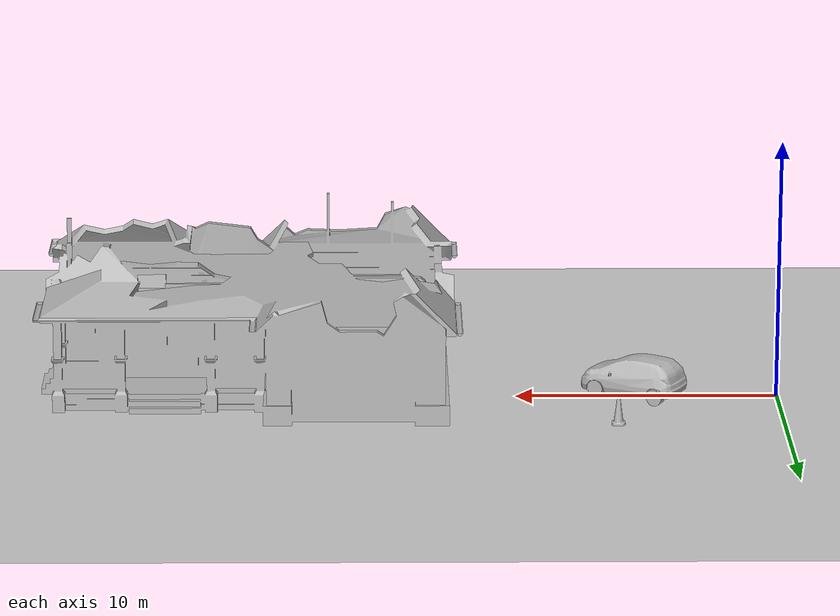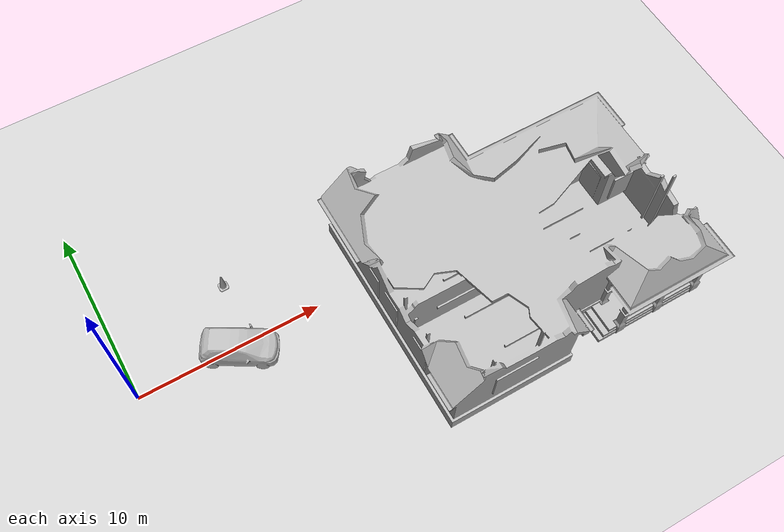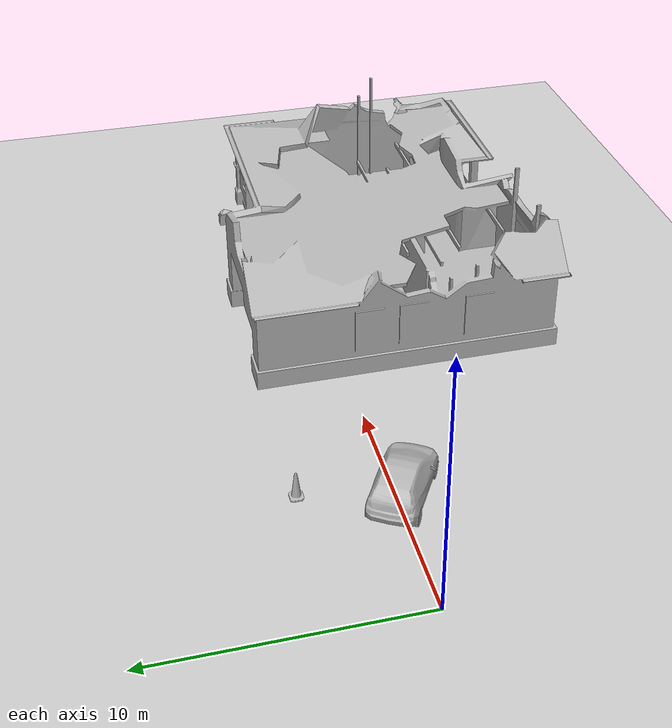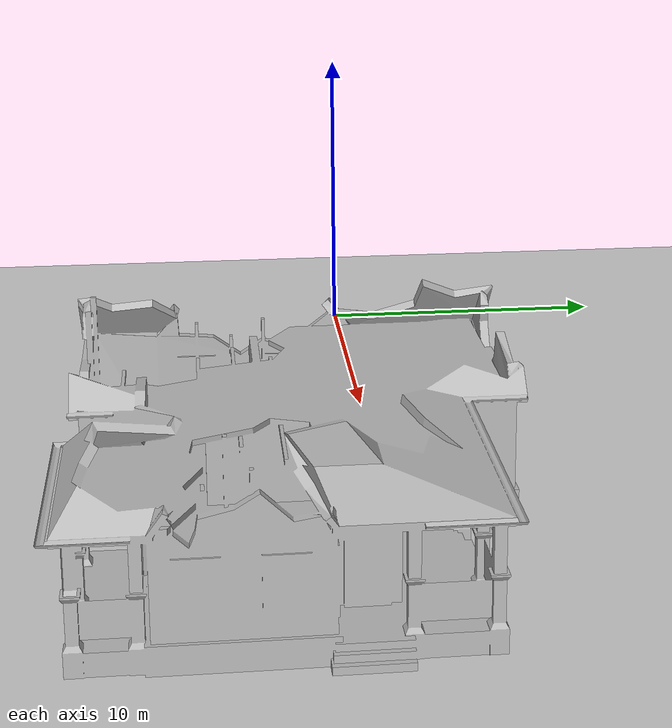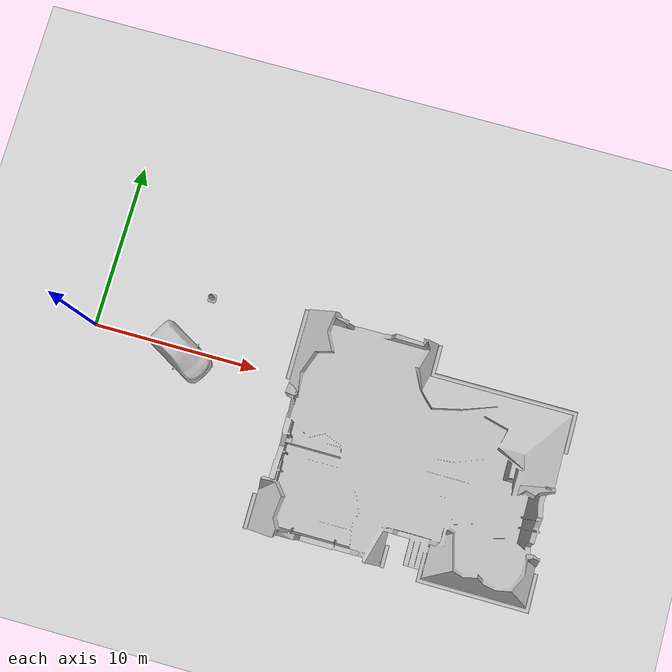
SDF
<sdf version="1.7">
 <world name="default">
  <light name="sun" type="directional">
   <pose>0 0 10 0 -0 0</pose>
   <diffuse>0.8 0.8 0.8 1</diffuse>
   <specular>0.2 0.2 0.2 1</specular>
   <attenuation>
    <range>1000</range>
    <constant>0.9</constant>
    <linear>0.01</linear>
    <quadratic>0.001</quadratic>
   </attenuation>
   <direction>-0.5 0.1 -0.9</direction>
   <spot><inner_angle>0</inner_angle><outer_angle>0</outer_angle><falloff>0</falloff></spot>
  </light>
  <model name="ground_plane">
   <static>1</static>
   <link name="link">
    <collision name="collision">
     <geometry><plane><normal>0 0 1</normal><size>100 100</size></plane></geometry>
     <surface>
      <contact><collide_bitmask>65535</collide_bitmask></contact>
      <friction><ode><mu>100</mu><mu2>50</mu2></ode></friction>
     </surface>
    </collision>
    <visual name="visual">
     <cast_shadows>0</cast_shadows>
     <geometry><plane><normal>0 0 1</normal><size>100 100</size></plane></geometry>
     <material>
      <script><uri>file://media/materials/scripts/gazebo.material</uri><name>Gazebo/Grey</name></script>
     </material>
    </visual>
   </link>
  </model>
  <gravity>0 0 -9.8</gravity>
  <magnetic_field>6e-06 2.3e-05 -4.2e-05</magnetic_field>
  <atmosphere type="adiabatic"/>
  <physics type="ode">
   <max_step_size>0.001</max_step_size>
   <real_time_factor>1</real_time_factor>
   <real_time_update_rate>1000</real_time_update_rate>
  </physics>
  <scene><ambient>0.4 0.4 0.4 1</ambient><background>0.7 0.7 0.7 1</background><shadows>1</shadows></scene>
  <spherical_coordinates>
   <surface_model>EARTH_WGS84</surface_model>
   <latitude_deg>0</latitude_deg>
   <longitude_deg>0</longitude_deg>
   <elevation>0</elevation>
   <heading_deg>0</heading_deg>
  </spherical_coordinates>
  <model name="hatchback">
   <static>1</static>
   <link name="link">
    <collision name="collision">
     <pose>0 0 0 0 -0 1.5708</pose>
     <geometry>
      <mesh><scale>0.0254 0.0254 0.0254</scale><uri>model://hatchback/meshes/hatchback.obj</uri></mesh>
     </geometry>
    </collision>
    <visual name="visual">
     <pose>0 0 0 0 -0 1.5708</pose>
     <geometry>
      <mesh><scale>0.0254 0.0254 0.0254</scale><uri>model://hatchback/meshes/hatchback.obj</uri></mesh>
     </geometry>
    </visual>
   </link>
   <pose>5.1748 -0.078351 0 0 0 -0.525194</pose>
  </model>
  <model name="Construction Cone">
   <link name="link">
    <collision name="collision">
     <geometry>
      <mesh><scale>10 10 10</scale><uri>model://construction_cone/meshes/construction_cone.dae</uri></mesh>
     </geometry>
    </collision>
    <visual name="visual">
     <geometry>
      <mesh><scale>10 10 10</scale><uri>model://construction_cone/meshes/construction_cone.dae</uri></mesh>
     </geometry>
    </visual>
    <inertial>
     <inertia><ixx>1</ixx><ixy>0</ixy><ixz>0</ixz><iyy>1</iyy><iyz>0</iyz><izz>1</izz></inertia>
     <mass>1</mass>
    </inertial>
   </link>
   <pose>6.25031 3.41225 -0 0 -0 0</pose>
  </model>
  <model name="collapsed_house">
   <static>1</static>
   <link name="link">
    <collision name="collision">
     <geometry>
      <mesh><scale>1.5 1.5 1.5</scale><uri>model://collapsed_house/meshes/collapsed_house.dae</uri></mesh>
     </geometry>
    </collision>
    <visual name="visual">
     <geometry>
      <mesh><scale>1.5 1.5 1.5</scale><uri>model://collapsed_house/meshes/collapsed_house.dae</uri></mesh>
     </geometry>
    </visual>
   </link>
   <pose>20.1855 -2.74845 0 0 -0 0</pose>
  </model>
 </world>
</sdf>
